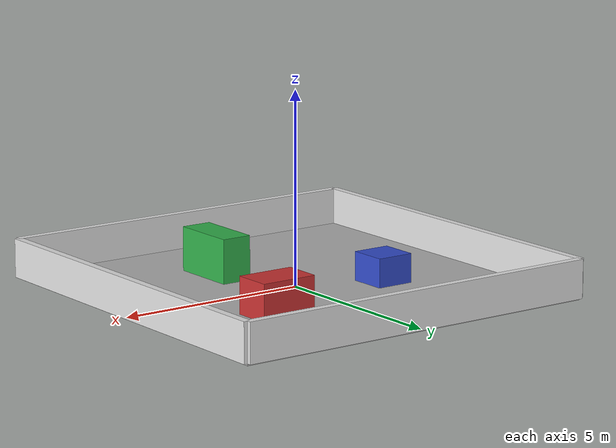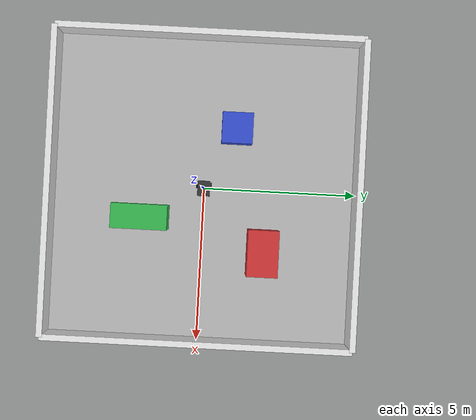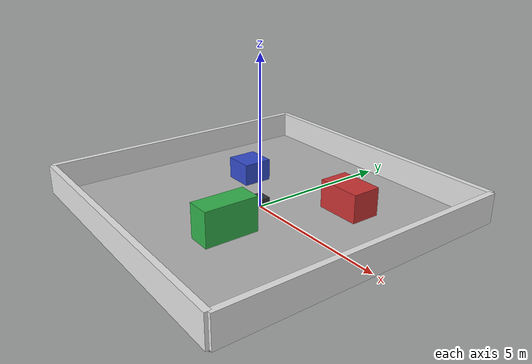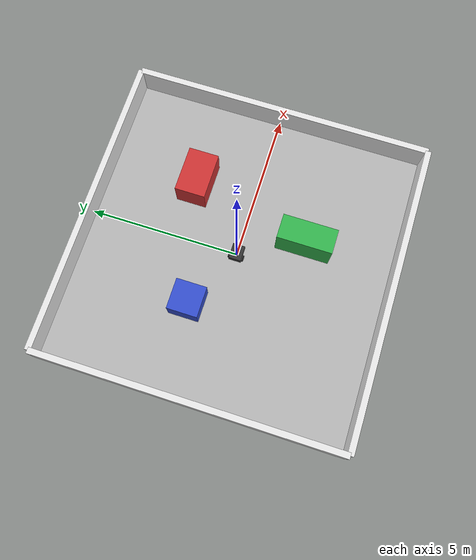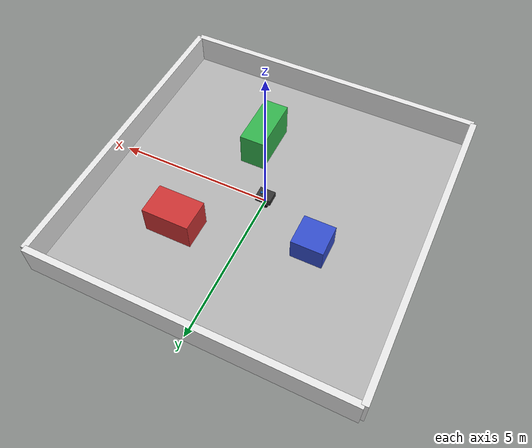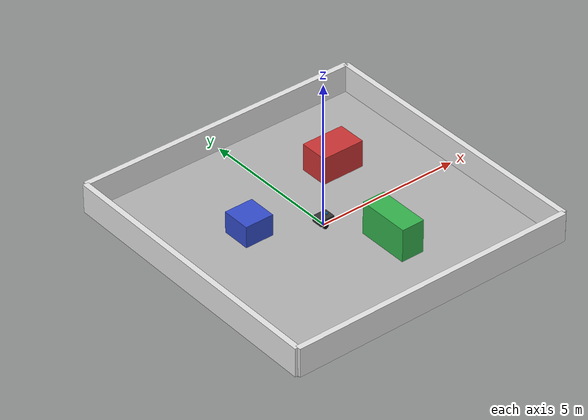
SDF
<?xml version="1.0" ?>

<sdf version="1.9">

    <world name="basic_world">

        <!-- Explizite Plugins ersetzen in Harmonic die Server-Standardplugins. -->
        <!-- Bestehende Physik, GUI-Szene und Befehle deshalb beibehalten. -->
        <plugin filename="gz-sim-physics-system"
                name="gz::sim::systems::Physics"/>
        <plugin filename="gz-sim-user-commands-system"
                name="gz::sim::systems::UserCommands"/>
        <plugin filename="gz-sim-scene-broadcaster-system"
                name="gz::sim::systems::SceneBroadcaster"/>
        <plugin filename="gz-sim-sensors-system"
                name="gz::sim::systems::Sensors">
            <render_engine>ogre2</render_engine>
        </plugin>

        <!-- SZENE / DARSTELLUNG       -->
        <scene>
            <ambient>0.6 0.6 0.6 1</ambient>
            <background>0.8 0.8 0.8 1</background>
            <shadows>true</shadows>
        </scene>

        <!-- PHYSIK                    -->
        <physics name="physics" type="ignored">
            <max_step_size>0.001</max_step_size>
            <real_time_factor>1.0</real_time_factor>
        </physics>

        <!-- SONNE / BELEUCHTUNG       -->
        <light type="directional" name="sun">
            <cast_shadows>true</cast_shadows>

            <!-- x y z roll pitch yaw -->
            <pose>0 0 10 0 0 0</pose>

            <diffuse>0.8 0.8 0.8 1</diffuse>
            <specular>0.2 0.2 0.2 1</specular>

            <direction>-0.5 0.1 -0.9</direction>
        </light>

        <!-- BODEN                     -->
        <model name="ground">
            <static>true</static>

            <link name="ground_link">

                <!-- Physische Kollisionsfläche -->
                <collision name="ground_collision">
                    <geometry>
                        <box>
                            <size>10 10 0.1</size>
                        </box>
                    </geometry>
                </collision>

                <!-- Sichtbarer Boden -->
                <visual name="ground_visual">
                    <geometry>
                        <box>
                            <size>10 10 0.1</size>
                        </box>
                    </geometry>

                    <material>
                        <ambient>0.7 0.7 0.7 1</ambient>
                        <diffuse>0.7 0.7 0.7 1</diffuse>
                        <specular>0.1 0.1 0.1 1</specular>
                    </material>
                </visual>

            </link>
        </model>

        <!-- WAND HINTEN               -->
        <model name="wall_back">
            <static>true</static>

            <pose>0 5 0.5 0 0 0</pose>

            <link name="wall_link">

                <collision name="collision">
                    <geometry>
                        <box>
                            <size>10 0.2 1</size>
                        </box>
                    </geometry>
                </collision>

                <visual name="visual">
                    <geometry>
                        <box>
                            <size>10 0.2 1</size>
                        </box>
                    </geometry>

                    <material>
                        <ambient>0.9 0.9 0.9 1</ambient>
                        <diffuse>0.9 0.9 0.9 1</diffuse>
                        <specular>0.1 0.1 0.1 1</specular>
                    </material>
                </visual>

            </link>
        </model>

        <!-- WAND VORNE                -->
        <model name="wall_front">
            <static>true</static>

            <pose>0 -5 0.5 0 0 0</pose>

            <link name="wall_link">

                <collision name="collision">
                    <geometry>
                        <box>
                            <size>10 0.2 1</size>
                        </box>
                    </geometry>
                </collision>

                <visual name="visual">
                    <geometry>
                        <box>
                            <size>10 0.2 1</size>
                        </box>
                    </geometry>

                    <material>
                        <ambient>0.9 0.9 0.9 1</ambient>
                        <diffuse>0.9 0.9 0.9 1</diffuse>
                        <specular>0.1 0.1 0.1 1</specular>
                    </material>
                </visual>

            </link>
        </model>

        <!-- WAND LINKS                -->
        <model name="wall_left">
            <static>true</static>

            <pose>-5 0 0.5 0 0 0</pose>

            <link name="wall_link">

                <collision name="collision">
                    <geometry>
                        <box>
                            <size>0.2 10 1</size>
                        </box>
                    </geometry>
                </collision>

                <visual name="visual">
                    <geometry>
                        <box>
                            <size>0.2 10 1</size>
                        </box>
                    </geometry>

                    <material>
                        <ambient>0.9 0.9 0.9 1</ambient>
                        <diffuse>0.9 0.9 0.9 1</diffuse>
                        <specular>0.1 0.1 0.1 1</specular>
                    </material>
                </visual>

            </link>
        </model>

        <!-- WAND RECHTS               -->
        <model name="wall_right">
            <static>true</static>

            <pose>5 0 0.5 0 0 0</pose>

            <link name="wall_link">

                <collision name="collision">
                    <geometry>
                        <box>
                            <size>0.2 10 1</size>
                        </box>
                    </geometry>
                </collision>

                <visual name="visual">
                    <geometry>
                        <box>
                            <size>0.2 10 1</size>
                        </box>
                    </geometry>

                    <material>
                        <ambient>0.9 0.9 0.9 1</ambient>
                        <diffuse>0.9 0.9 0.9 1</diffuse>
                        <specular>0.1 0.1 0.1 1</specular>
                    </material>
                </visual>

            </link>
        </model>

        <!-- HINDERNIS 1 - ROT         -->
        <model name="obstacle_1">
            <static>true</static>

            <!-- Position: x=2, y=2 -->
            <pose>2 2 0.5 0 0 0</pose>

            <link name="obstacle_link">

                <collision name="collision">
                    <geometry>
                        <box>
                            <size>1.5 1.0 1.0</size>
                        </box>
                    </geometry>
                </collision>

                <visual name="visual">
                    <geometry>
                        <box>
                            <size>1.5 1.0 1.0</size>
                        </box>
                    </geometry>

                    <material>
                        <ambient>0.8 0.2 0.2 1</ambient>
                        <diffuse>0.8 0.2 0.2 1</diffuse>
                        <specular>0.1 0.1 0.1 1</specular>
                    </material>
                </visual>

            </link>
        </model>

        <!-- HINDERNIS 2 - BLAU        -->
        <model name="obstacle_2">
            <static>true</static>

            <!-- Position: x=-2, y=1 -->
            <pose>-2 1 0.4 0 0 0</pose>

            <link name="obstacle_link">

                <collision name="collision">
                    <geometry>
                        <box>
                            <size>1.0 1.0 0.8</size>
                        </box>
                    </geometry>
                </collision>

                <visual name="visual">
                    <geometry>
                        <box>
                            <size>1.0 1.0 0.8</size>
                        </box>
                    </geometry>

                    <material>
                        <ambient>0.2 0.3 0.8 1</ambient>
                        <diffuse>0.2 0.3 0.8 1</diffuse>
                        <specular>0.1 0.1 0.1 1</specular>
                    </material>
                </visual>

            </link>
        </model>

        <!-- HINDERNIS 3 - GRÜN        -->
        <model name="obstacle_3">
            <static>true</static>

            <!-- Position: x=1, y=-2 -->
            <pose>1 -2 0.6 0 0 0</pose>

            <link name="obstacle_link">

                <collision name="collision">
                    <geometry>
                        <box>
                            <size>0.8 1.8 1.2</size>
                        </box>
                    </geometry>
                </collision>

                <visual name="visual">
                    <geometry>
                        <box>
                            <size>0.8 1.8 1.2</size>
                        </box>
                    </geometry>

                    <material>
                        <ambient>0.2 0.7 0.3 1</ambient>
                        <diffuse>0.2 0.7 0.3 1</diffuse>
                        <specular>0.1 0.1 0.1 1</specular>
                    </material>
                </visual>

            </link>
        </model>

        <!-- CURIOUS ROBOT             -->
        <include>
            <uri>model://curious_robot</uri>

            <!-- Startposition -->
            <pose>0 0 0.25 0 0 0</pose>
        </include>
    </world>

</sdf>

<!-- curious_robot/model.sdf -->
<sdf version="1.9">

    <model name="curious_robot">

        <!-- Der Roboter soll von der Physik beeinflusst werden -->
        <static>false</static>

        <!-- CHASSIS / HAUPTKÖRPER                    -->
        <link name="chassis">

            <!-- Masse des Chassis -->
            <inertial>
                <mass>2.0</mass>

                <inertia>
                    <ixx>0.0217</ixx>
                    <iyy>0.0417</iyy>
                    <izz>0.0617</izz>

                    <ixy>0</ixy>
                    <ixz>0</ixz>
                    <iyz>0</iyz>
                </inertia>
            </inertial>

            <!-- Physische Form -->
            <collision name="chassis_collision">
                <geometry>
                    <box>
                        <!-- Länge / Breite / Höhe -->
                        <size>0.5 0.4 0.2</size>
                    </box>
                </geometry>
            </collision>

            <!-- Sichtbare Form -->
            <visual name="chassis_visual">
                <geometry>
                    <box>
                        <size>0.5 0.4 0.2</size>
                    </box>
                </geometry>

                <material>
                    <ambient>0.15 0.15 0.15 1</ambient>
                    <diffuse>0.2 0.2 0.2 1</diffuse>
                    <specular>0.3 0.3 0.3 1</specular>
                </material>
            </visual>

            <!-- 2D-LIDAR, FEST AM CHASSIS                 -->
            <!-- Gehäuse auf der Oberseite: 0.20/2 + 0.04/2 = 0.12 m -->
            <visual name="lidar_housing">
                <pose>0.125 0 0.12 0 0 0</pose>
                <geometry>
                    <cylinder>
                        <radius>0.04</radius>
                        <length>0.04</length>
                    </cylinder>
                </geometry>
                <material>
                    <ambient>0.1 0.4 0.7 1</ambient>
                    <diffuse>0.1 0.4 0.7 1</diffuse>
                </material>
            </visual>

            <sensor name="lidar" type="gpu_lidar">
                <!-- x = 0.50/4; z = Chassisoberseite 0.10 + 0.05 m -->
                <!-- Scanebene liegt auch über dem Gehäuse (Oberkante 0.14 m) -->
                <pose>0.125 0 0.15 0 0 0</pose>
                <topic>/model/curious_robot/lidar</topic>
                <always_on>true</always_on>
                <update_rate>10</update_rate>
                <visualize>true</visualize>
                <lidar>
                    <scan>
                        <horizontal>
                            <!-- 361 Werte inklusive beider Endpunkte: 1 Grad Abstand -->
                            <samples>361</samples>
                            <resolution>1</resolution>
                            <min_angle>-3.141592653589793</min_angle>
                            <max_angle>3.141592653589793</max_angle>
                        </horizontal>
                        <vertical>
                            <samples>1</samples>
                            <resolution>1</resolution>
                            <min_angle>0</min_angle>
                            <max_angle>0</max_angle>
                        </vertical>
                    </scan>
                    <range>
                        <min>0.1</min>
                        <max>10</max>
                        <resolution>0.01</resolution>
                    </range>
                </lidar>
            </sensor>

        </link>

        <!-- LINKES RAD                               -->
        <link name="left_wheel">

            <!-- Achse einen Radradius hinter der Mitte: Schwerpunkt im Stützdreieck -->
            <!-- Radunterkante: -0.10 - 0.10 = -0.20 m -->
            <pose>-0.10 0.23 -0.10 1.5708 0 0</pose>

            <inertial>
                <mass>0.2</mass>

                <inertia>
                    <ixx>0.0005</ixx>
                    <iyy>0.0005</iyy>
                    <izz>0.0005</izz>

                    <ixy>0</ixy>
                    <ixz>0</ixz>
                    <iyz>0</iyz>
                </inertia>
            </inertial>

            <collision name="left_wheel_collision">
                <geometry>
                    <cylinder>
                        <radius>0.10</radius>
                        <length>0.05</length>
                    </cylinder>
                </geometry>
            </collision>

            <visual name="left_wheel_visual">
                <geometry>
                    <cylinder>
                        <radius>0.10</radius>
                        <length>0.05</length>
                    </cylinder>
                </geometry>

                <material>
                    <ambient>0.05 0.05 0.05 1</ambient>
                    <diffuse>0.05 0.05 0.05 1</diffuse>
                </material>
            </visual>

        </link>

        <!-- RECHTES RAD                              -->
        <link name="right_wheel">

            <pose>-0.10 -0.23 -0.10 1.5708 0 0</pose>

            <inertial>
                <mass>0.2</mass>

                <inertia>
                    <ixx>0.0005</ixx>
                    <iyy>0.0005</iyy>
                    <izz>0.0005</izz>

                    <ixy>0</ixy>
                    <ixz>0</ixz>
                    <iyz>0</iyz>
                </inertia>
            </inertial>

            <collision name="right_wheel_collision">
                <geometry>
                    <cylinder>
                        <radius>0.10</radius>
                        <length>0.05</length>
                    </cylinder>
                </geometry>
            </collision>

            <visual name="right_wheel_visual">
                <geometry>
                    <cylinder>
                        <radius>0.10</radius>
                        <length>0.05</length>
                    </cylinder>
                </geometry>

                <material>
                    <ambient>0.05 0.05 0.05 1</ambient>
                    <diffuse>0.05 0.05 0.05 1</diffuse>
                </material>
            </visual>

        </link>

        <!-- PASSIVER CASTER / STÜTZE                 -->
        <link name="caster_support">

            <!-- Kugelunterkante: -0.16 - 0.04 = -0.20 m, wie bei den Rädern -->
            <pose>0.18 0 -0.16 0 0 0</pose>

            <inertial>
                <mass>0.05</mass>

                <inertia>
                    <ixx>0.00002</ixx>
                    <iyy>0.00002</iyy>
                    <izz>0.00002</izz>

                    <ixy>0</ixy>
                    <ixz>0</ixz>
                    <iyz>0</iyz>
                </inertia>
            </inertial>

            <collision name="caster_collision">
                <geometry>
                    <sphere>
                        <radius>0.04</radius>
                    </sphere>
                </geometry>
            </collision>

            <visual name="caster_visual">
                <geometry>
                    <sphere>
                        <radius>0.04</radius>
                    </sphere>
                </geometry>

                <material>
                    <ambient>0.4 0.4 0.4 1</ambient>
                    <diffuse>0.5 0.5 0.5 1</diffuse>
                </material>
            </visual>

        </link>

        <joint name="caster_joint" type="ball">
            <parent>chassis</parent>
            <child>caster_support</child>
            <pose>0 0 0 0 0 0</pose>
        </joint>

        <!-- GELENK: CHASSIS -> LINKES RAD            -->
        <joint name="left_wheel_joint" type="revolute">

            <parent>chassis</parent>
            <child>left_wheel</child>

            <axis>
                <!-- Modell-Y ist die Radachse; der Rad-/Gelenkrahmen ist gedreht -->
                <xyz expressed_in="__model__">0 1 0</xyz>

                <limit>
                    <lower>-1e16</lower>
                    <upper>1e16</upper>
                </limit>
            </axis>

        </joint>

        <!-- GELENK: CHASSIS -> RECHTES RAD           -->
        <joint name="right_wheel_joint" type="revolute">

            <parent>chassis</parent>
            <child>right_wheel</child>

            <axis>
                <!-- Modell-Y ist die Radachse; der Rad-/Gelenkrahmen ist gedreht -->
                <xyz expressed_in="__model__">0 1 0</xyz>

                <limit>
                    <lower>-1e16</lower>
                    <upper>1e16</upper>
                </limit>
            </axis>

        </joint>

        <!-- DIFFERENTIALANTRIEB                      -->
        <plugin filename="gz-sim-diff-drive-system"
                name="gz::sim::systems::DiffDrive">
            <left_joint>left_wheel_joint</left_joint>
            <right_joint>right_wheel_joint</right_joint>

            <!-- Abstand der Radmitten: 0.23 - (-0.23) = 0.46 m -->
            <wheel_separation>0.46</wheel_separation>
            <wheel_radius>0.10</wheel_radius>

            <!-- gz.msgs.Twist: linear.x in m/s, angular.z in rad/s -->
            <topic>/model/curious_robot/cmd_vel</topic>
        </plugin>

    </model>

</sdf>
